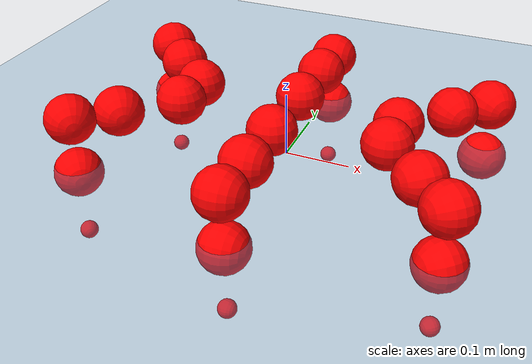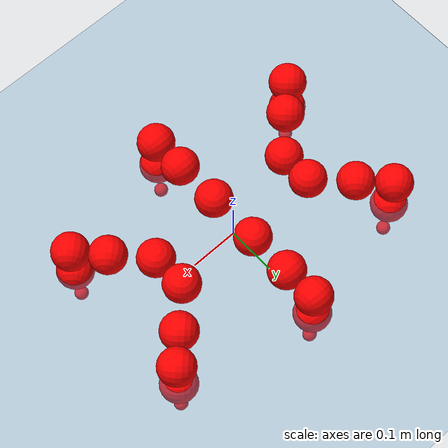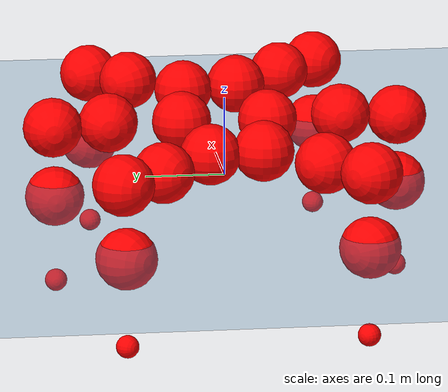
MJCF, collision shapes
<mujoco model="Golem">
  <compiler angle="radian" assetdir="assets" balanceinertia="true" inertiafromgeom="false"/>

  <option timestep="0.005" density="1.2" viscosity="2e-05"/>

  <size nkey="1"/>

  <visual>
    <quality shadowsize="8192"/>
    <map shadowclip="0.5"/>
  </visual>

  <default>
    <default class="/">
      <joint armature="0.01" damping="0.01" frictionloss="0.01"/>
      <geom contype="0" conaffinity="0" group="1" solref="-1000 -80"/>
      <site size="0.01 0.005 0.005" group="5"/>
      <general forcelimited="true" biastype="affine" gainprm="25" biasprm="0 -25 -0.5"/>
      <default class="visual">
        <geom type="mesh" group="2"/>
      </default>
      <default class="collision">
        <geom group="3"/>
      </default>
      <default class="foot">
        <geom size="0.01 0 0" condim="6" group="4" priority="1" solimp="0.015 1 0.01"/>
      </default>
      <default class="reward_collision_sphere">
        <geom group="5" rgba="1 0 0 1"/>
      </default>
    </default>
  </default>

  <asset>
    <texture type="skybox" colorspace="auto" name="//unnamed_texture_0" builtin="gradient" rgb1="0.95 0.95 0.95" rgb2="0.95 0.95 0.95" width="100" height="600"/>
    <texture type="2d" colorspace="auto" name="texplane" builtin="checker" rgb1="0.345 0.575 0.748" rgb2="0.345 0.575 0.748" markrgb="1 1 1" width="512" height="512"/>
    <material name="MatPlane" class="/" texture="texplane" texuniform="true" texrepeat="2 2" specular="0.9"/>
    <mesh name="body" class="/" file="body.stl" scale="0.001 0.001 0.001"/>
    <mesh name="coxa" class="/" file="coxa.stl" scale="0.001 0.001 0.001"/>
    <mesh name="femur" class="/" file="femur.stl" scale="0.001 0.001 0.001"/>
    <mesh name="tibia" class="/" file="tibia.stl" scale="0.001 0.001 0.001"/>
    <mesh name="tarsus" class="/" file="tarsus.stl" scale="0.001 0.001 0.001"/>
  </asset>

  <worldbody>
    <geom name="floor" class="/" size="100 100 0.125" type="plane" group="0" material="MatPlane"/>
    <light name="toplight_shadow" class="/" pos="0 0 5" dir="0.0990148 0.0990148 -0.990148" type="directional" ambient="0.04 0.04 0.04" diffuse="0.55 0.55 0.55" specular="0.12 0.12 0.12"/>
    <light name="toplight_fill" class="/" pos="0 0 5" dir="0.0990148 0.0990148 -0.990148" type="directional" castshadow="false" ambient="0.04 0.04 0.04" diffuse="0.3 0.3 0.3" specular="0.08 0.08 0.08"/>
    <body name="trunk" pos="0.00159547 0.000222001 0.000367437" quat="0.999999 -0.000923363 0.000918551 -0.000299253">
      <inertial pos="0.000787248 0.000850364 -0.00166177" quat="0.999905 -0.00761872 0.0101051 -0.00549047" mass="3.07252" diaginertia="0.0114858 0.00119505 0.0189068"/>
      <joint name="//unnamed_joint_0" type="free"/>
      <geom name="//unnamed_geom_1" class="/" pos="0 0 0.0722124" quat="1 0 0 0" type="mesh" rgba="0.9 0.9 0.9 1" mesh="body"/>
      <site name="imu" class="/" pos="0.120031 -0.00127477 0.115809" size="0.00937861"/>
      <camera name="track" class="/" pos="0 -1.31474 0" quat="0.707107 0.707107 0 0" mode="trackcom"/>
      <camera name="ego_camera" class="/" pos="0.133626 0 0.112832" quat="-0.5 -0.5 0.5 0.5"/>
      <body name="coxa_RR" pos="-0.182527 -0.0520944 0.073881" quat="0.382236 -0.000106354 0.000765092 -0.924064">
        <inertial pos="0.00114049 -0.00211926 0.00056302" quat="0.999997 -0.000352619 -0.00038891 -0.00235698" mass="0.172635" diaginertia="0.0115244 0.0012479 0.0188079"/>
        <joint name="coxa_joint_RR" class="/" pos="0 0 0" axis="0.00137384 -0.0016237 -0.999998" range="-3.19276 3.17222" armature="0.00827897" damping="0.0139673" frictionloss="0.00959069"/>
        <geom name="//unnamed_geom_2" class="/" type="mesh" rgba="0.2 0.2 0.2 1" mesh="coxa"/>
        <geom name="//unnamed_geom_3" class="reward_collision_sphere" size="0.0375144" pos="-0.0308368 0 0"/>
        <body name="femur_RR" pos="0.0637237 0.00019147 0.00110578" quat="0.499991 -0.499989 0.500039 0.499982">
          <inertial pos="3.87044e-05 -0.00274522 -0.000291387" quat="0.999999 -0.00011731 -0.00116598 -0.00045303" mass="0.164096" diaginertia="0.0113523 0.00122232 0.0183453"/>
          <joint name="femur_joint_RR" class="/" pos="0 0 0" axis="0.00171151 -0.0015948 -0.999997" range="-3.08878 3.15246" armature="0.00823434" damping="0.00805476" frictionloss="0.00814113"/>
          <geom name="//unnamed_geom_4" class="/" type="mesh" rgba="0.9 0.9 0.9 1" mesh="femur"/>
          <geom name="//unnamed_geom_5" class="reward_collision_sphere" size="0.0375144"/>
          <body name="tibia_RR" pos="-0.00031805 -0.0705574 -0.00206483" quat="-0.000132818 1 2.47797e-05 -5.07069e-05">
            <inertial pos="-0.00275794 0.00028414 0.000345649" quat="0.999999 -0.00162893 0.000424991 -0.000176969" mass="0.159601" diaginertia="0.0110082 0.00117359 0.0180785"/>
            <joint name="tibia_joint_RR" class="/" pos="0 0 0" axis="0.000144113 0.000709642 1" range="-3.14328 3.10711" armature="0.00976952" damping="0.0206895" frictionloss="0.00979172"/>
            <geom name="//unnamed_geom_6" class="/" type="mesh" rgba="0.2 0.2 0.2 1" mesh="tibia"/>
            <geom name="//unnamed_geom_7" class="reward_collision_sphere" size="0.0375144"/>
            <body name="tarsus_RR" pos="0.0925162 0.000186744 0.00188136" quat="1 -6.49944e-06 -4.39465e-06 4.10443e-06">
              <inertial pos="0.0648825 0.00112427 0.00275516" quat="0.506721 0.501884 0.497076 0.494228" mass="0.170456" diaginertia="0.0114297 0.00127799 0.0186017"/>
              <joint name="tarsus_joint_RR" class="/" pos="0 0 0" axis="-0.00579921 0.00739884 0.999956" range="-3.1304 3.13373" armature="0.00915402" damping="0.00545046" frictionloss="0.00872554"/>
              <geom name="//unnamed_geom_8" class="/" type="mesh" rgba="0.9 0.9 0.9 1" mesh="tarsus"/>
              <geom name="foot_1" class="foot" size="0.0089878" pos="0.115124 0 0" quat="0 -0.707107 0 0.707107"/>
              <geom name="//unnamed_geom_10" class="reward_collision_sphere" size="0.0375144"/>
              <geom name="//unnamed_geom_11" class="reward_collision_sphere" size="0.0140679" pos="0.110498 0 0"/>
              <site name="foot_1" class="foot" pos="0.115124 0 0" quat="0 -0.707107 0 0.707107" size="0.00937861"/>
            </body>
          </body>
        </body>
      </body>
      <body name="coxa_RM" pos="-0.00121708 -0.0856884 0.0706787" quat="0.707223 -0.000150872 1.83099e-05 -0.706991">
        <inertial pos="-0.000166023 -0.00217543 0.00186451" quat="0.999918 0.00185024 0.00264259 0.0124229" mass="0.16348" diaginertia="0.0110802 0.00120122 0.0185794"/>
        <joint name="coxa_joint_RM" class="/" pos="0 0 0" axis="0.00244495 0.000887554 -0.999997" range="-3.13009 3.11374" armature="0.00818495" damping="0.0115951" frictionloss="0.0103757"/>
        <geom name="//unnamed_geom_12" class="/" type="mesh" rgba="0.2 0.2 0.2 1" mesh="coxa"/>
        <geom name="//unnamed_geom_13" class="reward_collision_sphere" size="0.0375144" pos="-0.0308368 0 0"/>
        <body name="femur_RM" pos="0.0625539 0.00238883 0.00330898" quat="0.499388 -0.499973 0.500648 0.49999">
          <inertial pos="-0.00202229 -0.00213645 -0.00096591" quat="0.999994 -0.00262734 -0.000705881 0.00205181" mass="0.169308" diaginertia="0.0114383 0.00117955 0.0183305"/>
          <joint name="femur_joint_RM" class="/" pos="0 0 0" axis="0.00503391 0.0128922 -0.999904" range="-3.15467 3.15317" armature="0.00889253" damping="0.0127721" frictionloss="0.00969647"/>
          <geom name="//unnamed_geom_14" class="/" type="mesh" rgba="0.9 0.9 0.9 1" mesh="femur"/>
          <geom name="//unnamed_geom_15" class="reward_collision_sphere" size="0.0375144"/>
          <body name="tibia_RM" pos="0.00358122 -0.071993 -0.00126139" quat="7.69671e-05 1 -0.000131506 -0.000142252">
            <inertial pos="-0.00262281 -0.000626436 5.52481e-05" quat="0.99999 0.00047695 0.00161251 0.00417722" mass="0.163673" diaginertia="0.0117678 0.00121454 0.0181233"/>
            <joint name="tibia_joint_RM" class="/" pos="0 0 0" axis="-8.31067e-06 -0.00854274 0.999964" range="-3.15818 3.12617" armature="0.00891329" damping="0" frictionloss="0.00810513"/>
            <geom name="//unnamed_geom_16" class="/" type="mesh" rgba="0.2 0.2 0.2 1" mesh="tibia"/>
            <geom name="//unnamed_geom_17" class="reward_collision_sphere" size="0.0375144"/>
            <body name="tarsus_RM" pos="0.0871666 -0.000338324 -0.000893142" quat="0.999999 0.000366135 -0.00122286 -0.000607003">
              <inertial pos="0.0587183 -0.000224581 -0.00250938" quat="0.499842 0.502086 0.494135 0.503882" mass="0.164753" diaginertia="0.0111723 0.0012295 0.0177817"/>
              <joint name="tarsus_joint_RM" class="/" pos="0 0 0" axis="0.00172169 -0.0060732 0.99998" stiffness="0.00792331" range="-3.14065 3.09766" armature="0.00940463" damping="0.0138298" frictionloss="0.00856814"/>
              <geom name="//unnamed_geom_18" class="/" type="mesh" rgba="0.9 0.9 0.9 1" mesh="tarsus"/>
              <geom name="foot_2" class="foot" size="0.00930776" pos="0.115124 0 0" quat="0 -0.707107 0 0.707107"/>
              <geom name="//unnamed_geom_20" class="reward_collision_sphere" size="0.0375144"/>
              <geom name="//unnamed_geom_21" class="reward_collision_sphere" size="0.0140679" pos="0.110498 0 0"/>
              <site name="foot_2" class="foot" pos="0.115124 0 0" quat="0 -0.707107 0 0.707107" size="0.00937861"/>
            </body>
          </body>
        </body>
      </body>
      <body name="coxa_RF" pos="0.183881 -0.0556096 0.0744188" quat="0.923883 -1.55992e-06 -2.96956e-05 -0.382676">
        <inertial pos="-0.000171058 -0.000132413 -0.00173134" quat="0.999944 -0.00058475 0.0025014 0.010288" mass="0.161944" diaginertia="0.0115035 0.00122182 0.0181452"/>
        <joint name="coxa_joint_RF" class="/" pos="0 0 0" axis="-0.00018196 -6.86299e-05 -1" range="-3.13425 3.10976" armature="0.00971229" damping="0" frictionloss="0.00808167"/>
        <geom name="//unnamed_geom_22" class="/" type="mesh" rgba="0.2 0.2 0.2 1" mesh="coxa"/>
        <geom name="//unnamed_geom_23" class="reward_collision_sphere" size="0.0375144" pos="-0.0308368 0 0"/>
        <body name="femur_RF" pos="0.0584625 -0.00239143 -0.000219235" quat="0.499155 -0.500068 0.500609 0.500167">
          <inertial pos="0.00125034 -0.000454876 -0.00268577" quat="0.999929 0.011436 0.00116225 -0.00299808" mass="0.158934" diaginertia="0.0111202 0.00119875 0.0177229"/>
          <joint name="femur_joint_RF" class="/" pos="0 0 0" axis="-0.00478675 -0.0120397 -0.999916" range="-3.08755 3.18715" armature="0.00904401" damping="0.0112929" frictionloss="0.00976713"/>
          <geom name="//unnamed_geom_24" class="/" type="mesh" rgba="0.9 0.9 0.9 1" mesh="femur"/>
          <geom name="//unnamed_geom_25" class="reward_collision_sphere" size="0.0375144"/>
          <body name="tibia_RF" pos="-0.00152039 -0.0700645 -0.00292877" quat="-9.44448e-05 1 0.000822093 0.000194448">
            <inertial pos="0.000170339 -0.000993125 -0.000603706" quat="0.999905 -0.00758949 -0.00390635 -0.0108363" mass="0.174278" diaginertia="0.0117468 0.00126548 0.0186189"/>
            <joint name="tibia_joint_RF" class="/" pos="0 0 0" axis="0.00196418 0.00300859 0.999994" stiffness="0.0180513" range="-3.1435 3.12361" armature="0.00942913" damping="0.0270216" frictionloss="0.00929741"/>
            <geom name="//unnamed_geom_26" class="/" type="mesh" rgba="0.2 0.2 0.2 1" mesh="tibia"/>
            <geom name="//unnamed_geom_27" class="reward_collision_sphere" size="0.0375144"/>
            <body name="tarsus_RF" pos="0.0868288 -0.00013687 0.00135833" quat="1 -0.000661236 0.000537086 -0.000168121">
              <inertial pos="0.063453 -0.000476246 0.00213819" quat="0.500043 0.499883 0.499425 0.500648" mass="0.160634" diaginertia="0.0118154 0.00122169 0.018031"/>
              <joint name="tarsus_joint_RF" class="/" pos="0 0 0" axis="0.00894513 -0.0070812 0.999935" range="-3.11868 3.09889" armature="0.0101969" damping="0" frictionloss="0.00888187"/>
              <geom name="//unnamed_geom_28" class="/" type="mesh" rgba="0.9 0.9 0.9 1" mesh="tarsus"/>
              <geom name="foot_3" class="foot" size="0.00952152" pos="0.115124 0 0" quat="0 -0.707107 0 0.707107"/>
              <geom name="//unnamed_geom_30" class="reward_collision_sphere" size="0.0375144"/>
              <geom name="//unnamed_geom_31" class="reward_collision_sphere" size="0.0140679" pos="0.110498 0 0"/>
              <site name="foot_3" class="foot" pos="0.115124 0 0" quat="0 -0.707107 0 0.707107" size="0.00937861"/>
            </body>
          </body>
        </body>
      </body>
      <body name="coxa_LR" pos="-0.183007 0.0569603 0.0716841" quat="0.382719 -2.592e-05 -5.33612e-05 0.923865">
        <inertial pos="0.000377535 -0.00304922 -0.00115017" quat="0.999965 -0.00172444 0.00101573 0.00814539" mass="0.161728" diaginertia="0.0116615 0.00126306 0.0183465"/>
        <joint name="coxa_joint_LR" class="/" pos="0 0 0" axis="0.00189474 0.00329339 -0.999993" stiffness="0.00967663" range="-3.12574 3.1142" armature="0.0107075" damping="0.0111749" frictionloss="0.00996836"/>
        <geom name="//unnamed_geom_32" class="/" type="mesh" rgba="0.2 0.2 0.2 1" mesh="coxa"/>
        <geom name="//unnamed_geom_33" class="reward_collision_sphere" size="0.0375144" pos="-0.0308368 0 0"/>
        <body name="femur_LR" pos="0.0608218 0.000818012 -0.00250578" quat="0.499689 -0.499752 0.499865 0.500693">
          <inertial pos="0.000186731 -0.00272244 0.00115558" quat="0.999917 -0.00349331 0.0116105 -0.00425318" mass="0.170278" diaginertia="0.0114923 0.00122457 0.018518"/>
          <joint name="femur_joint_LR" class="/" pos="0 0 0" axis="-0.00550162 -0.00461889 0.999974" range="-3.14478 3.14424" armature="0.0103869" damping="0.0110212" frictionloss="0.00893271"/>
          <geom name="//unnamed_geom_34" class="/" type="mesh" rgba="0.9 0.9 0.9 1" mesh="femur"/>
          <geom name="//unnamed_geom_35" class="reward_collision_sphere" size="0.0375144"/>
          <body name="tibia_LR" pos="-0.000927623 -0.0729935 -0.00198608" quat="-7.18824e-06 1 5.94176e-05 4.49197e-05">
            <inertial pos="-0.000608422 0.000357968 0.000805561" quat="0.999944 -0.00268388 -0.0101565 -0.00110507" mass="0.170488" diaginertia="0.0118437 0.00127782 0.0189647"/>
            <joint name="tibia_joint_LR" class="/" pos="0 0 0" axis="-0.000468737 0.010265 -0.999947" range="-3.12224 3.18136" armature="0.00858963" damping="0.0249794" frictionloss="0.0102517"/>
            <geom name="//unnamed_geom_36" class="/" type="mesh" rgba="0.2 0.2 0.2 1" mesh="tibia"/>
            <geom name="//unnamed_geom_37" class="reward_collision_sphere" size="0.0375144"/>
            <body name="tarsus_LR" pos="0.0914373 -0.00113158 -0.00266635" quat="0.999999 -0.000632677 -0.000478994 -0.000835627">
              <inertial pos="0.0605015 -0.00089251 0.00227194" quat="0.499269 0.500906 0.500528 0.499295" mass="0.166626" diaginertia="0.0118681 0.00121371 0.0187913"/>
              <joint name="tarsus_joint_LR" class="/" pos="0 0 0" axis="-0.00539318 0.000233318 -0.999985" range="-3.09592 3.09064" armature="0.00863668" damping="0.00976725" frictionloss="0.00929798"/>
              <geom name="//unnamed_geom_38" class="/" type="mesh" rgba="0.9 0.9 0.9 1" mesh="tarsus"/>
              <geom name="foot_4" class="foot" size="0.00936102" pos="0.115124 0 0" quat="0.707107 0 -0.707107 0"/>
              <geom name="//unnamed_geom_40" class="reward_collision_sphere" size="0.0375144"/>
              <geom name="//unnamed_geom_41" class="reward_collision_sphere" size="0.0140679" pos="0.110498 0 0"/>
              <site name="foot_4" class="foot" pos="0.115124 0 0" quat="0.707107 0 -0.707107 0" size="0.00937861"/>
            </body>
          </body>
        </body>
      </body>
      <body name="coxa_LM" pos="-0.000864229 0.0848461 0.0710948" quat="0.706592 -0.000749689 0.000693299 0.70762">
        <inertial pos="0.00010058 0.000138568 -0.00166245" quat="0.999912 0.00509311 -0.00963803 -0.0076213" mass="0.165284" diaginertia="0.010797 0.00119563 0.0176705"/>
        <joint name="coxa_joint_LM" class="/" pos="0 0 0" axis="-0.00324856 0.00115674 -0.999994" range="-3.1332 3.08515" armature="0.00987203" damping="0.0196024" frictionloss="0.00942556"/>
        <geom name="//unnamed_geom_42" class="/" type="mesh" rgba="0.2 0.2 0.2 1" mesh="coxa"/>
        <geom name="//unnamed_geom_43" class="reward_collision_sphere" size="0.0375144" pos="-0.0308368 0 0"/>
        <body name="femur_LM" pos="0.0618284 -0.000523111 0.000865521" quat="0.499937 -0.499834 0.500107 0.500121">
          <inertial pos="0.001183 0.00216322 -0.00211081" quat="0.999998 0.000107751 0.00199146 0.000661486" mass="0.171593" diaginertia="0.0111585 0.00127184 0.0189099"/>
          <joint name="femur_joint_LM" class="/" pos="0 0 0" axis="2.37887e-05 -0.000499479 1" stiffness="0.00374771" range="-3.1347 3.13017" armature="0.00872501" damping="0" frictionloss="0.00990902"/>
          <geom name="//unnamed_geom_44" class="/" type="mesh" rgba="0.9 0.9 0.9 1" mesh="femur"/>
          <geom name="//unnamed_geom_45" class="reward_collision_sphere" size="0.0375144"/>
          <body name="tibia_LM" pos="0.00326972 -0.0701742 0.00200747" quat="4.83333e-05 0.999999 -0.00091902 0.000891118">
            <inertial pos="0.00219038 -0.000522795 0.00154459" quat="0.999984 -0.00533188 -0.00161091 -0.000563129" mass="0.165245" diaginertia="0.0116478 0.00120176 0.0179552"/>
            <joint name="tibia_joint_LM" class="/" pos="0 0 0" axis="-0.00449018 0.0122813 -0.999915" stiffness="0.00660379" range="-3.12712 3.14273" armature="0.0103126" damping="0" frictionloss="0.0106624"/>
            <geom name="//unnamed_geom_46" class="/" type="mesh" rgba="0.2 0.2 0.2 1" mesh="tibia"/>
            <geom name="//unnamed_geom_47" class="reward_collision_sphere" size="0.0375144"/>
            <body name="tarsus_LM" pos="0.0885427 -0.00109416 -0.00295468" quat="1 -4.64513e-05 -6.67389e-05 1.5827e-05">
              <inertial pos="0.0610799 -0.0023366 -0.00261189" quat="0.500025 0.500006 0.499783 0.500185" mass="0.165775" diaginertia="0.0113334 0.00121432 0.0187216"/>
              <joint name="tarsus_joint_LM" class="/" pos="0 0 0" axis="-0.00905913 -0.00121562 -0.999958" stiffness="0.00282823" range="-3.13231 3.1555" armature="0.00894342" damping="0.0152678" frictionloss="0.00823991"/>
              <geom name="//unnamed_geom_48" class="/" type="mesh" rgba="0.9 0.9 0.9 1" mesh="tarsus"/>
              <geom name="foot_5" class="foot" size="0.00946183" pos="0.115124 0 0" quat="0.707107 0 -0.707107 0"/>
              <geom name="//unnamed_geom_50" class="reward_collision_sphere" size="0.0375144"/>
              <geom name="//unnamed_geom_51" class="reward_collision_sphere" size="0.0140679" pos="0.110498 0 0"/>
              <site name="foot_5" class="foot" pos="0.115124 0 0" quat="0.707107 0 -0.707107 0" size="0.00937861"/>
            </body>
          </body>
        </body>
      </body>
      <body name="coxa_LF" pos="0.181446 0.0571176 0.0697487" quat="0.923508 0.000281424 3.1075e-05 0.38358">
        <inertial pos="0.00133664 0.000753454 0.00277003" quat="0.999997 -0.000984283 -0.00135699 -0.00151806" mass="0.164037" diaginertia="0.0112319 0.00126637 0.0182885"/>
        <joint name="coxa_joint_LF" class="/" pos="0 0 0" axis="-0.00482586 0.000444881 -0.999988" stiffness="0.00144635" range="-3.11836 3.13472" armature="0.00830927" damping="0.000803874" frictionloss="0.00942025"/>
        <geom name="//unnamed_geom_52" class="/" type="mesh" rgba="0.2 0.2 0.2 1" mesh="coxa"/>
        <geom name="//unnamed_geom_53" class="reward_collision_sphere" size="0.0375144" pos="-0.0308368 0 0"/>
        <body name="femur_LF" pos="0.0617759 0.000564187 -0.002551" quat="0.500694 -0.499564 0.500405 0.499335">
          <inertial pos="-0.000771292 0.0015862 0.00122123" quat="0.999904 -0.00606031 -0.0104986 -0.00666887" mass="0.159853" diaginertia="0.0113812 0.0012272 0.0182123"/>
          <joint name="femur_joint_LF" class="/" pos="0 0 0" axis="-0.000313482 0.000926816 1" range="-3.14018 3.1329" armature="0.00941232" damping="0.00356059" frictionloss="0.00946535"/>
          <geom name="//unnamed_geom_54" class="/" type="mesh" rgba="0.9 0.9 0.9 1" mesh="femur"/>
          <geom name="//unnamed_geom_55" class="reward_collision_sphere" size="0.0375144"/>
          <body name="tibia_LF" pos="0.00154918 -0.0681736 -0.000285367" quat="-0.000159102 1 -0.000438954 -0.000606085">
            <inertial pos="-0.000861345 0.000538625 -0.000921764" quat="0.999949 -0.00836574 0.0046234 0.00321163" mass="0.162655" diaginertia="0.0111656 0.00123377 0.0176183"/>
            <joint name="tibia_joint_LF" class="/" pos="0 0 0" axis="-8.4216e-05 -0.00806264 -0.999967" stiffness="0.0172526" range="-3.13762 3.19319" armature="0.00882673" damping="0.0160613" frictionloss="0.00869072"/>
            <geom name="//unnamed_geom_56" class="/" type="mesh" rgba="0.2 0.2 0.2 1" mesh="tibia"/>
            <geom name="//unnamed_geom_57" class="reward_collision_sphere" size="0.0375144"/>
            <body name="tarsus_LF" pos="0.0919877 -0.000444875 -0.000816413" quat="1 -0.000378557 -0.000137046 1.36577e-05">
              <inertial pos="0.0595789 -0.00297418 -0.00197591" quat="0.500751 0.508767 0.495264 0.495093" mass="0.166134" diaginertia="0.0117462 0.0012459 0.0185853"/>
              <joint name="tarsus_joint_LF" class="/" pos="0 0 0" axis="-0.0145879 -0.00380929 -0.999886" range="-3.18714 3.19046" armature="0.0081344" damping="0.00440884" frictionloss="0.008967"/>
              <geom name="//unnamed_geom_58" class="/" type="mesh" rgba="0.9 0.9 0.9 1" mesh="tarsus"/>
              <geom name="foot_6" class="foot" size="0.0100157" pos="0.115124 0 0" quat="0.707107 0 -0.707107 0"/>
              <geom name="//unnamed_geom_60" class="reward_collision_sphere" size="0.0375144"/>
              <geom name="//unnamed_geom_61" class="reward_collision_sphere" size="0.0140679" pos="0.110498 0 0"/>
              <site name="foot_6" class="foot" pos="0.115124 0 0" quat="0.707107 0 -0.707107 0" size="0.00937861"/>
            </body>
          </body>
        </body>
      </body>
    </body>
  </worldbody>

  <contact>
    <pair class="/" geom1="floor" geom2="foot_1" name="//unnamed_contact_0"/>
    <pair class="/" geom1="floor" geom2="foot_2" name="//unnamed_contact_1"/>
    <pair class="/" geom1="floor" geom2="foot_3" name="//unnamed_contact_2"/>
    <pair class="/" geom1="floor" geom2="foot_4" name="//unnamed_contact_3"/>
    <pair class="/" geom1="floor" geom2="foot_5" name="//unnamed_contact_4"/>
    <pair class="/" geom1="floor" geom2="foot_6" name="//unnamed_contact_5"/>
  </contact>

  <actuator>
    <general name="coxa_joint_RR" class="/" joint="coxa_joint_RR" forcerange="-6.90672 6.90672" gainprm="22.5092" biasprm="0 -22.5092 -0.469397"/>
    <general name="femur_joint_RR" class="/" joint="femur_joint_RR" forcerange="-7.39304 7.39304" gainprm="22.5092" biasprm="0 -22.5092 -0.469397"/>
    <general name="tibia_joint_RR" class="/" joint="tibia_joint_RR" forcerange="-6.74041 6.74041" gainprm="22.5092" biasprm="0 -22.5092 -0.469397"/>
    <general name="tarsus_joint_RR" class="/" joint="tarsus_joint_RR" forcerange="-7.56019 7.56019" gainprm="22.5092" biasprm="0 -22.5092 -0.469397"/>
    <general name="coxa_joint_RM" class="/" joint="coxa_joint_RM" forcerange="-6.30423 6.30423" gainprm="22.5092" biasprm="0 -22.5092 -0.469397"/>
    <general name="femur_joint_RM" class="/" joint="femur_joint_RM" forcerange="-6.9717 6.9717" gainprm="22.5092" biasprm="0 -22.5092 -0.469397"/>
    <general name="tibia_joint_RM" class="/" joint="tibia_joint_RM" forcerange="-7.55692 7.55692" gainprm="22.5092" biasprm="0 -22.5092 -0.469397"/>
    <general name="tarsus_joint_RM" class="/" joint="tarsus_joint_RM" forcerange="-6.75138 6.75138" gainprm="22.5092" biasprm="0 -22.5092 -0.469397"/>
    <general name="coxa_joint_RF" class="/" joint="coxa_joint_RF" forcerange="-7.07069 7.07069" gainprm="22.5092" biasprm="0 -22.5092 -0.469397"/>
    <general name="femur_joint_RF" class="/" joint="femur_joint_RF" forcerange="-6.78564 6.78564" gainprm="22.5092" biasprm="0 -22.5092 -0.469397"/>
    <general name="tibia_joint_RF" class="/" joint="tibia_joint_RF" forcerange="-7.09172 7.09172" gainprm="22.5092" biasprm="0 -22.5092 -0.469397"/>
    <general name="tarsus_joint_RF" class="/" joint="tarsus_joint_RF" forcerange="-6.89733 6.89733" gainprm="22.5092" biasprm="0 -22.5092 -0.469397"/>
    <general name="coxa_joint_LR" class="/" joint="coxa_joint_LR" forcerange="-6.75887 6.75887" gainprm="22.5092" biasprm="0 -22.5092 -0.469397"/>
    <general name="femur_joint_LR" class="/" joint="femur_joint_LR" forcerange="-6.83288 6.83288" gainprm="22.5092" biasprm="0 -22.5092 -0.469397"/>
    <general name="tibia_joint_LR" class="/" joint="tibia_joint_LR" forcerange="-7.22691 7.22691" gainprm="22.5092" biasprm="0 -22.5092 -0.469397"/>
    <general name="tarsus_joint_LR" class="/" joint="tarsus_joint_LR" forcerange="-6.63277 6.63277" gainprm="22.5092" biasprm="0 -22.5092 -0.469397"/>
    <general name="coxa_joint_LM" class="/" joint="coxa_joint_LM" forcerange="-6.69675 6.69675" gainprm="22.5092" biasprm="0 -22.5092 -0.469397"/>
    <general name="femur_joint_LM" class="/" joint="femur_joint_LM" forcerange="-7.52095 7.52095" gainprm="22.5092" biasprm="0 -22.5092 -0.469397"/>
    <general name="tibia_joint_LM" class="/" joint="tibia_joint_LM" forcerange="-6.83432 6.83432" gainprm="22.5092" biasprm="0 -22.5092 -0.469397"/>
    <general name="tarsus_joint_LM" class="/" joint="tarsus_joint_LM" forcerange="-6.3793 6.3793" gainprm="22.5092" biasprm="0 -22.5092 -0.469397"/>
    <general name="coxa_joint_LF" class="/" joint="coxa_joint_LF" forcerange="-6.43411 6.43411" gainprm="22.5092" biasprm="0 -22.5092 -0.469397"/>
    <general name="femur_joint_LF" class="/" joint="femur_joint_LF" forcerange="-6.39549 6.39549" gainprm="22.5092" biasprm="0 -22.5092 -0.469397"/>
    <general name="tibia_joint_LF" class="/" joint="tibia_joint_LF" forcerange="-6.16069 6.16069" gainprm="22.5092" biasprm="0 -22.5092 -0.469397"/>
    <general name="tarsus_joint_LF" class="/" joint="tarsus_joint_LF" forcerange="-6.15525 6.15525" gainprm="22.5092" biasprm="0 -22.5092 -0.469397"/>
  </actuator>

  <sensor>
    <gyro site="imu" name="imu_angular_velocity"/>
    <velocimeter site="imu" name="imu_linear_velocity"/>
    <framelinvel objtype="site" objname="foot_1" name="foot_1_global_linear_velocity"/>
    <framelinvel objtype="site" objname="foot_2" name="foot_2_global_linear_velocity"/>
    <framelinvel objtype="site" objname="foot_3" name="foot_3_global_linear_velocity"/>
    <framelinvel objtype="site" objname="foot_4" name="foot_4_global_linear_velocity"/>
    <framelinvel objtype="site" objname="foot_5" name="foot_5_global_linear_velocity"/>
    <framelinvel objtype="site" objname="foot_6" name="foot_6_global_linear_velocity"/>
  </sensor>

  <keyframe>
    <key name="home" qpos="0 0 0.1457 1 0 0 0 0 0 0 0 0 0 0 0 0 0 0 0 0 0 0 0 0 0 0 0 0 0 0 0"/>
  </keyframe>
</mujoco>
